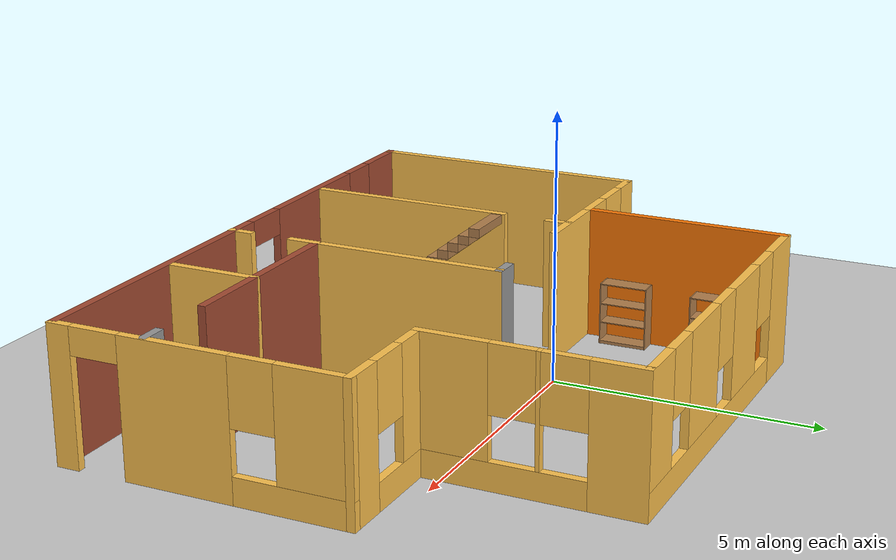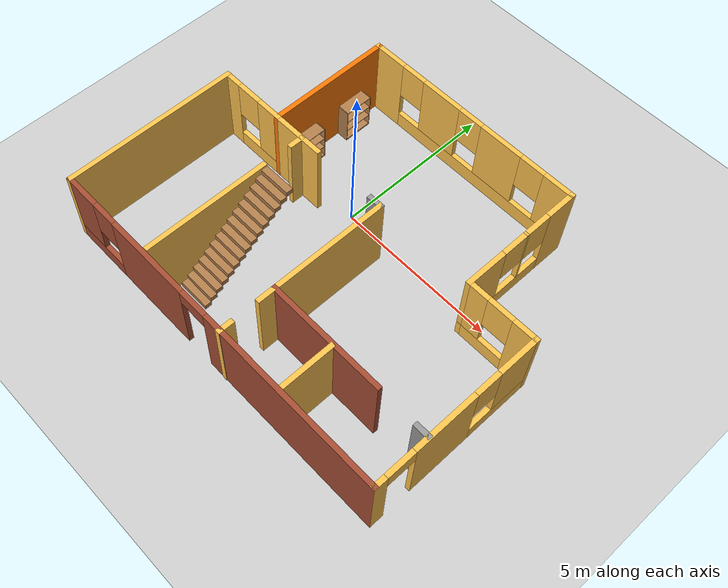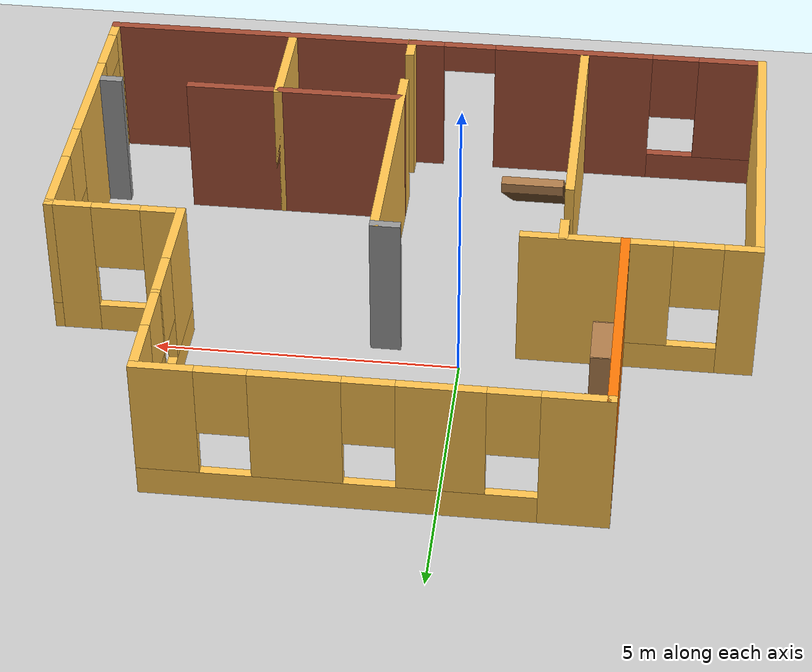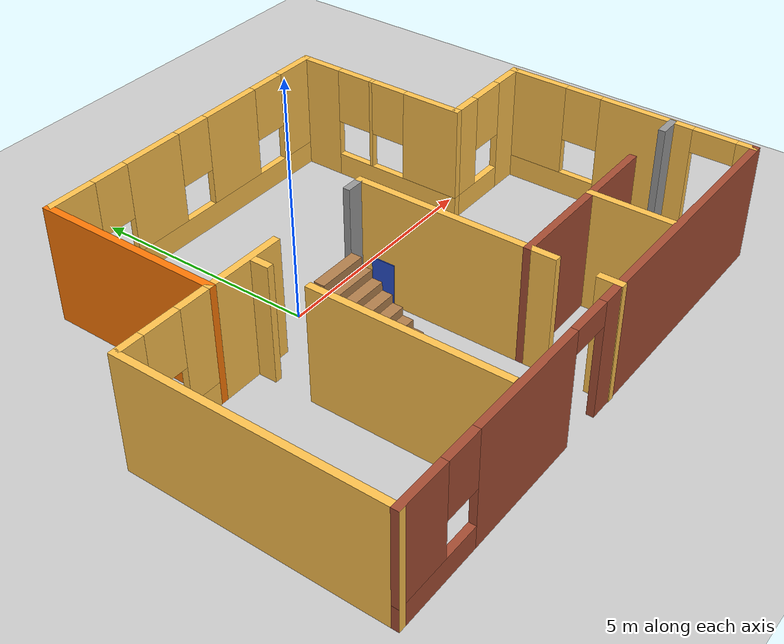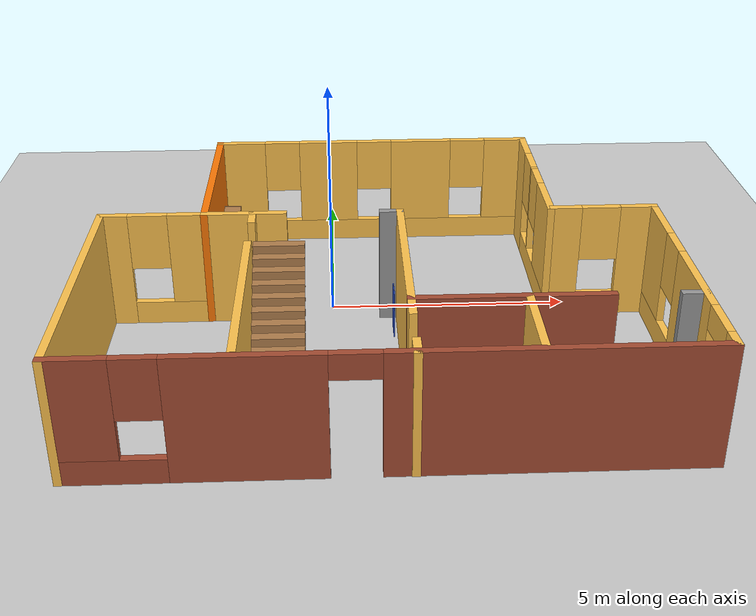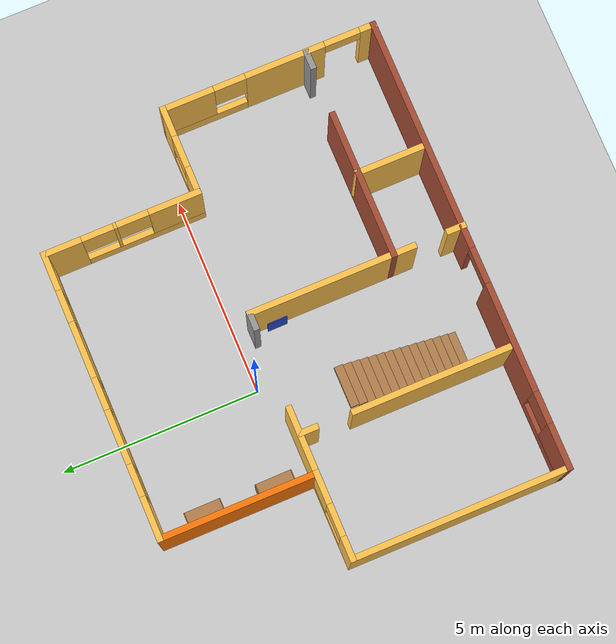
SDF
<sdf version="1.6">
 <world name="default">
  <model name="ground_plane">
   <static>1</static>
   <link name="link">
    <collision name="collision">
     <geometry><plane><normal>0 0 1</normal><size>100 100</size></plane></geometry>
     <surface><friction><ode><mu>100</mu><mu2>50</mu2></ode></friction></surface>
    </collision>
    <visual name="visual">
     <cast_shadows>0</cast_shadows>
     <geometry><plane><normal>0 0 1</normal><size>100 100</size></plane></geometry>
     <material>
      <script><uri>file://media/materials/scripts/gazebo.material</uri><name>Gazebo/Grey</name></script>
     </material>
    </visual>
   </link>
  </model>
  <model name="myhome">
   <pose>1.00458 -1.17606 0 0 -0 0</pose>
   <link name="Stairs_0">
    <visual name="Stairs_0_Visual_0">
     <pose>-1.99954 -3.64454 0.083333 0 -0 -3.14159</pose>
     <geometry><box><size>1 0.213511 0.166667</size></box></geometry>
     <material>
      <script><uri>file://media/materials/scripts/gazebo.material</uri><name>Gazebo/Wood</name></script>
      <ambient>0.760784 0.662745 0.627451 1</ambient>
     </material>
     <meta><layer>0</layer></meta>
    </visual>
    <collision name="Stairs_0_Collision_0">
     <geometry><box><size>1 0.213511 0.166667</size></box></geometry>
     <pose>-1.99954 -3.64454 0.083333 0 -0 -3.14159</pose>
    </collision>
    <visual name="Stairs_0_Visual_1">
     <pose>-1.99954 -3.43103 0.25 0 -0 -3.14159</pose>
     <geometry><box><size>1 0.213511 0.166667</size></box></geometry>
     <material>
      <script><uri>file://media/materials/scripts/gazebo.material</uri><name>Gazebo/Wood</name></script>
      <ambient>0.760784 0.662745 0.627451 1</ambient>
     </material>
     <meta><layer>0</layer></meta>
    </visual>
    <collision name="Stairs_0_Collision_1">
     <geometry><box><size>1 0.213511 0.166667</size></box></geometry>
     <pose>-1.99954 -3.43103 0.25 0 -0 -3.14159</pose>
    </collision>
    <visual name="Stairs_0_Visual_2">
     <pose>-1.99954 -3.21752 0.416667 0 -0 -3.14159</pose>
     <geometry><box><size>1 0.213511 0.166667</size></box></geometry>
     <material>
      <script><uri>file://media/materials/scripts/gazebo.material</uri><name>Gazebo/Wood</name></script>
      <ambient>0.760784 0.662745 0.627451 1</ambient>
     </material>
     <meta><layer>0</layer></meta>
    </visual>
    <collision name="Stairs_0_Collision_2">
     <geometry><box><size>1 0.213511 0.166667</size></box></geometry>
     <pose>-1.99954 -3.21752 0.416667 0 -0 -3.14159</pose>
    </collision>
    <visual name="Stairs_0_Visual_3">
     <pose>-1.99954 -3.00401 0.583333 0 -0 -3.14159</pose>
     <geometry><box><size>1 0.213511 0.166667</size></box></geometry>
     <material>
      <script><uri>file://media/materials/scripts/gazebo.material</uri><name>Gazebo/Wood</name></script>
      <ambient>0.760784 0.662745 0.627451 1</ambient>
     </material>
     <meta><layer>0</layer></meta>
    </visual>
    <collision name="Stairs_0_Collision_3">
     <geometry><box><size>1 0.213511 0.166667</size></box></geometry>
     <pose>-1.99954 -3.00401 0.583333 0 -0 -3.14159</pose>
    </collision>
    <visual name="Stairs_0_Visual_4">
     <pose>-1.99954 -2.7905 0.75 0 -0 -3.14159</pose>
     <geometry><box><size>1 0.213511 0.166667</size></box></geometry>
     <material>
      <script><uri>file://media/materials/scripts/gazebo.material</uri><name>Gazebo/Wood</name></script>
      <ambient>0.760784 0.662745 0.627451 1</ambient>
     </material>
     <meta><layer>0</layer></meta>
    </visual>
    <collision name="Stairs_0_Collision_4">
     <geometry><box><size>1 0.213511 0.166667</size></box></geometry>
     <pose>-1.99954 -2.7905 0.75 0 -0 -3.14159</pose>
    </collision>
    <visual name="Stairs_0_Visual_5">
     <pose>-1.99954 -2.57699 0.916667 0 -0 -3.14159</pose>
     <geometry><box><size>1 0.213511 0.166667</size></box></geometry>
     <material>
      <script><uri>file://media/materials/scripts/gazebo.material</uri><name>Gazebo/Wood</name></script>
      <ambient>0.760784 0.662745 0.627451 1</ambient>
     </material>
     <meta><layer>0</layer></meta>
    </visual>
    <collision name="Stairs_0_Collision_5">
     <geometry><box><size>1 0.213511 0.166667</size></box></geometry>
     <pose>-1.99954 -2.57699 0.916667 0 -0 -3.14159</pose>
    </collision>
    <visual name="Stairs_0_Visual_6">
     <pose>-1.99954 -2.36347 1.08333 0 -0 -3.14159</pose>
     <geometry><box><size>1 0.213511 0.166667</size></box></geometry>
     <material>
      <script><uri>file://media/materials/scripts/gazebo.material</uri><name>Gazebo/Wood</name></script>
      <ambient>0.760784 0.662745 0.627451 1</ambient>
     </material>
     <meta><layer>0</layer></meta>
    </visual>
    <collision name="Stairs_0_Collision_6">
     <geometry><box><size>1 0.213511 0.166667</size></box></geometry>
     <pose>-1.99954 -2.36347 1.08333 0 -0 -3.14159</pose>
    </collision>
    <visual name="Stairs_0_Visual_7">
     <pose>-1.99954 -2.14996 1.25 0 -0 -3.14159</pose>
     <geometry><box><size>1 0.213511 0.166667</size></box></geometry>
     <material>
      <script><uri>file://media/materials/scripts/gazebo.material</uri><name>Gazebo/Wood</name></script>
      <ambient>0.760784 0.662745 0.627451 1</ambient>
     </material>
     <meta><layer>0</layer></meta>
    </visual>
    <collision name="Stairs_0_Collision_7">
     <geometry><box><size>1 0.213511 0.166667</size></box></geometry>
     <pose>-1.99954 -2.14996 1.25 0 -0 -3.14159</pose>
    </collision>
    <visual name="Stairs_0_Visual_8">
     <pose>-1.99954 -1.93645 1.41667 0 -0 -3.14159</pose>
     <geometry><box><size>1 0.213511 0.166667</size></box></geometry>
     <material>
      <script><uri>file://media/materials/scripts/gazebo.material</uri><name>Gazebo/Wood</name></script>
      <ambient>0.760784 0.662745 0.627451 1</ambient>
     </material>
     <meta><layer>0</layer></meta>
    </visual>
    <collision name="Stairs_0_Collision_8">
     <geometry><box><size>1 0.213511 0.166667</size></box></geometry>
     <pose>-1.99954 -1.93645 1.41667 0 -0 -3.14159</pose>
    </collision>
    <visual name="Stairs_0_Visual_9">
     <pose>-1.99954 -1.72294 1.58333 0 -0 -3.14159</pose>
     <geometry><box><size>1 0.213511 0.166667</size></box></geometry>
     <material>
      <script><uri>file://media/materials/scripts/gazebo.material</uri><name>Gazebo/Wood</name></script>
      <ambient>0.760784 0.662745 0.627451 1</ambient>
     </material>
     <meta><layer>0</layer></meta>
    </visual>
    <collision name="Stairs_0_Collision_9">
     <geometry><box><size>1 0.213511 0.166667</size></box></geometry>
     <pose>-1.99954 -1.72294 1.58333 0 -0 -3.14159</pose>
    </collision>
    <visual name="Stairs_0_Visual_10">
     <pose>-1.99954 -1.50943 1.75 0 -0 -3.14159</pose>
     <geometry><box><size>1 0.213511 0.166667</size></box></geometry>
     <material>
      <script><uri>file://media/materials/scripts/gazebo.material</uri><name>Gazebo/Wood</name></script>
      <ambient>0.760784 0.662745 0.627451 1</ambient>
     </material>
     <meta><layer>0</layer></meta>
    </visual>
    <collision name="Stairs_0_Collision_10">
     <geometry><box><size>1 0.213511 0.166667</size></box></geometry>
     <pose>-1.99954 -1.50943 1.75 0 -0 -3.14159</pose>
    </collision>
    <visual name="Stairs_0_Visual_11">
     <pose>-1.99954 -1.29592 1.91667 0 -0 -3.14159</pose>
     <geometry><box><size>1 0.213511 0.166667</size></box></geometry>
     <material>
      <script><uri>file://media/materials/scripts/gazebo.material</uri><name>Gazebo/Wood</name></script>
      <ambient>0.760784 0.662745 0.627451 1</ambient>
     </material>
     <meta><layer>0</layer></meta>
    </visual>
    <collision name="Stairs_0_Collision_11">
     <geometry><box><size>1 0.213511 0.166667</size></box></geometry>
     <pose>-1.99954 -1.29592 1.91667 0 -0 -3.14159</pose>
    </collision>
    <visual name="Stairs_0_Visual_12">
     <pose>-1.99954 -1.08241 2.08333 0 -0 -3.14159</pose>
     <geometry><box><size>1 0.213511 0.166667</size></box></geometry>
     <material>
      <script><uri>file://media/materials/scripts/gazebo.material</uri><name>Gazebo/Wood</name></script>
      <ambient>0.760784 0.662745 0.627451 1</ambient>
     </material>
     <meta><layer>0</layer></meta>
    </visual>
    <collision name="Stairs_0_Collision_12">
     <geometry><box><size>1 0.213511 0.166667</size></box></geometry>
     <pose>-1.99954 -1.08241 2.08333 0 -0 -3.14159</pose>
    </collision>
    <visual name="Stairs_0_Visual_13">
     <pose>-1.99954 -0.868895 2.25 0 -0 -3.14159</pose>
     <geometry><box><size>1 0.213511 0.166667</size></box></geometry>
     <material>
      <script><uri>file://media/materials/scripts/gazebo.material</uri><name>Gazebo/Wood</name></script>
      <ambient>0.760784 0.662745 0.627451 1</ambient>
     </material>
     <meta><layer>0</layer></meta>
    </visual>
    <collision name="Stairs_0_Collision_13">
     <geometry><box><size>1 0.213511 0.166667</size></box></geometry>
     <pose>-1.99954 -0.868895 2.25 0 -0 -3.14159</pose>
    </collision>
    <visual name="Stairs_0_Visual_14">
     <pose>-1.99954 -0.655384 2.41667 0 -0 -3.14159</pose>
     <geometry><box><size>1 0.213511 0.166667</size></box></geometry>
     <material>
      <script><uri>file://media/materials/scripts/gazebo.material</uri><name>Gazebo/Wood</name></script>
      <ambient>0.760784 0.662745 0.627451 1</ambient>
     </material>
     <meta><layer>0</layer></meta>
    </visual>
    <collision name="Stairs_0_Collision_14">
     <geometry><box><size>1 0.213511 0.166667</size></box></geometry>
     <pose>-1.99954 -0.655384 2.41667 0 -0 -3.14159</pose>
    </collision>
   </link>
   <link name="Wall_0">
    <pose>0 -4.59248 0 0 -0 3.14159</pose>
    <visual name="Wall_0_Visual_0">
     <pose>-2.79983 0 1.25 0 -0 0</pose>
     <geometry><box><size>5.90034 0.15 2.5</size></box></geometry>
     <material>
      <script><uri>file://media/materials/scripts/gazebo.material</uri><name>Gazebo/Bricks</name></script>
      <ambient>1 0.764706 0.305882 1</ambient>
     </material>
     <meta><layer>0</layer></meta>
    </visual>
    <collision name="Wall_0_Collision_0">
     <geometry><box><size>5.90034 0.15 2.5</size></box></geometry>
     <pose>-2.79983 0 1.25 0 -0 0</pose>
    </collision>
    <visual name="Wall_0_Visual_1">
     <pose>2.41807 0 1.25 0 -0 0</pose>
     <geometry><box><size>2.73546 0.15 2.5</size></box></geometry>
     <material>
      <script><uri>file://media/materials/scripts/gazebo.material</uri><name>Gazebo/Bricks</name></script>
      <ambient>1 0.764706 0.305882 1</ambient>
     </material>
     <meta><layer>0</layer></meta>
    </visual>
    <collision name="Wall_0_Collision_1">
     <geometry><box><size>2.73546 0.15 2.5</size></box></geometry>
     <pose>2.41807 0 1.25 0 -0 0</pose>
    </collision>
    <visual name="Wall_0_Visual_2">
     <pose>4.7679 0 0.25 0 -0 0</pose>
     <geometry><box><size>1.9642 0.15 0.5</size></box></geometry>
     <material>
      <script><uri>file://media/materials/scripts/gazebo.material</uri><name>Gazebo/Bricks</name></script>
      <ambient>1 0.764706 0.305882 1</ambient>
     </material>
     <meta><layer>0</layer></meta>
    </visual>
    <collision name="Wall_0_Collision_2">
     <geometry><box><size>1.9642 0.15 0.5</size></box></geometry>
     <pose>4.7679 0 0.25 0 -0 0</pose>
    </collision>
    <visual name="Wall_0_Visual_3">
     <pose>5.1679 0 1.5 0 -0 0</pose>
     <geometry><box><size>1.1642 0.15 2</size></box></geometry>
     <material>
      <script><uri>file://media/materials/scripts/gazebo.material</uri><name>Gazebo/Bricks</name></script>
      <ambient>1 0.764706 0.305882 1</ambient>
     </material>
     <meta><layer>0</layer></meta>
    </visual>
    <collision name="Wall_0_Collision_3">
     <geometry><box><size>1.1642 0.15 2</size></box></geometry>
     <pose>5.1679 0 1.5 0 -0 0</pose>
    </collision>
    <visual name="Wall_0_Visual_4">
     <pose>4.1858 0 1.9 0 -0 0</pose>
     <geometry><box><size>0.8 0.15 1.2</size></box></geometry>
     <material>
      <script><uri>file://media/materials/scripts/gazebo.material</uri><name>Gazebo/Bricks</name></script>
      <ambient>1 0.764706 0.305882 1</ambient>
     </material>
     <meta><layer>0</layer></meta>
    </visual>
    <collision name="Wall_0_Collision_4">
     <geometry><box><size>0.8 0.15 1.2</size></box></geometry>
     <pose>4.1858 0 1.9 0 -0 0</pose>
    </collision>
    <visual name="Wall_0_Visual_5">
     <pose>0.600338 0 2.25 0 -0 0</pose>
     <geometry><box><size>0.9 0.15 0.5</size></box></geometry>
     <material>
      <script><uri>file://media/materials/scripts/gazebo.material</uri><name>Gazebo/Bricks</name></script>
      <ambient>1 0.764706 0.305882 1</ambient>
     </material>
     <meta><layer>0</layer></meta>
    </visual>
    <collision name="Wall_0_Collision_5">
     <geometry><box><size>0.9 0.15 0.5</size></box></geometry>
     <pose>0.600338 0 2.25 0 -0 0</pose>
    </collision>
   </link>
   <link name="Wall_10">
    <pose>3.525 2.68251 0 0 0 -1.5708</pose>
    <visual name="Wall_10_Visual_0">
     <pose>-1.49909 0 1.25 0 -0 0</pose>
     <geometry><box><size>1.00181 0.15 2.5</size></box></geometry>
     <material>
      <script><uri>file://media/materials/scripts/gazebo.material</uri><name>Gazebo/Grey</name></script>
      <ambient>1 0.764706 0.305882 1</ambient>
     </material>
     <meta><layer>0</layer></meta>
    </visual>
    <collision name="Wall_10_Collision_0">
     <geometry><box><size>1.00181 0.15 2.5</size></box></geometry>
     <pose>-1.49909 0 1.25 0 -0 0</pose>
    </collision>
    <visual name="Wall_10_Visual_1">
     <pose>0.500907 0 0.25 0 -0 0</pose>
     <geometry><box><size>2.99819 0.15 0.5</size></box></geometry>
     <material>
      <script><uri>file://media/materials/scripts/gazebo.material</uri><name>Gazebo/Grey</name></script>
      <ambient>1 0.764706 0.305882 1</ambient>
     </material>
     <meta><layer>0</layer></meta>
    </visual>
    <collision name="Wall_10_Collision_1">
     <geometry><box><size>2.99819 0.15 0.5</size></box></geometry>
     <pose>0.500907 0 0.25 0 -0 0</pose>
    </collision>
    <visual name="Wall_10_Visual_2">
     <pose>-0.160935 0 1.5 0 -0 0</pose>
     <geometry><box><size>0.074503 0.15 2</size></box></geometry>
     <material>
      <script><uri>file://media/materials/scripts/gazebo.material</uri><name>Gazebo/Grey</name></script>
      <ambient>1 0.764706 0.305882 1</ambient>
     </material>
     <meta><layer>0</layer></meta>
    </visual>
    <collision name="Wall_10_Collision_2">
     <geometry><box><size>0.074503 0.15 2</size></box></geometry>
     <pose>-0.160935 0 1.5 0 -0 0</pose>
    </collision>
    <visual name="Wall_10_Visual_3">
     <pose>1.33816 0 1.5 0 -0 0</pose>
     <geometry><box><size>1.32368 0.15 2</size></box></geometry>
     <material>
      <script><uri>file://media/materials/scripts/gazebo.material</uri><name>Gazebo/Grey</name></script>
      <ambient>1 0.764706 0.305882 1</ambient>
     </material>
     <meta><layer>0</layer></meta>
    </visual>
    <collision name="Wall_10_Collision_3">
     <geometry><box><size>1.32368 0.15 2</size></box></geometry>
     <pose>1.33816 0 1.5 0 -0 0</pose>
    </collision>
    <visual name="Wall_10_Visual_4">
     <pose>-0.598187 0 1.9 0 -0 0</pose>
     <geometry><box><size>0.8 0.15 1.2</size></box></geometry>
     <material>
      <script><uri>file://media/materials/scripts/gazebo.material</uri><name>Gazebo/Grey</name></script>
      <ambient>1 0.764706 0.305882 1</ambient>
     </material>
     <meta><layer>0</layer></meta>
    </visual>
    <collision name="Wall_10_Collision_4">
     <geometry><box><size>0.8 0.15 1.2</size></box></geometry>
     <pose>-0.598187 0 1.9 0 -0 0</pose>
    </collision>
    <visual name="Wall_10_Visual_5">
     <pose>0.276316 0 1.9 0 -0 0</pose>
     <geometry><box><size>0.8 0.15 1.2</size></box></geometry>
     <material>
      <script><uri>file://media/materials/scripts/gazebo.material</uri><name>Gazebo/Grey</name></script>
      <ambient>1 0.764706 0.305882 1</ambient>
     </material>
     <meta><layer>0</layer></meta>
    </visual>
    <collision name="Wall_10_Collision_5">
     <geometry><box><size>0.8 0.15 1.2</size></box></geometry>
     <pose>0.276316 0 1.9 0 -0 0</pose>
    </collision>
   </link>
   <link name="Wall_12">
    <collision name="Wall_12_Collision">
     <geometry><box><size>1.75 0.15 2.5</size></box></geometry>
     <pose>0 0 1.25 0 -0 0</pose>
    </collision>
    <visual name="Wall_12_Visual">
     <pose>0 0 1.25 0 -0 0</pose>
     <geometry><box><size>1.75 0.15 2.5</size></box></geometry>
     <material>
      <script><uri>file://media/materials/scripts/gazebo.material</uri><name>Gazebo/Grey</name></script>
      <ambient>1 0.764706 0.305882 1</ambient>
     </material>
     <meta><layer>0</layer></meta>
    </visual>
    <pose>-2.775 0.757515 0 0 -0 0</pose>
   </link>
   <link name="Wall_14">
    <collision name="Wall_14_Collision">
     <geometry><box><size>0.5 0.15 2.5</size></box></geometry>
     <pose>0 0 1.25 0 -0 0</pose>
    </collision>
    <visual name="Wall_14_Visual">
     <pose>0 0 1.25 0 -0 0</pose>
     <geometry><box><size>0.5 0.15 2.5</size></box></geometry>
     <material>
      <script><uri>file://media/materials/scripts/gazebo.material</uri><name>Gazebo/Grey</name></script>
      <ambient>1 0.764706 0.305882 1</ambient>
     </material>
     <meta><layer>0</layer></meta>
    </visual>
    <pose>-2.5942 0.552153 0 0 0 -1.5708</pose>
   </link>
   <link name="Wall_16">
    <collision name="Wall_16_Collision">
     <geometry><box><size>4 0.15 2.5</size></box></geometry>
     <pose>0 0 1.25 0 -0 0</pose>
    </collision>
    <visual name="Wall_16_Visual">
     <pose>0 0 1.25 0 -0 0</pose>
     <geometry><box><size>4 0.15 2.5</size></box></geometry>
     <material>
      <script><uri>file://media/materials/scripts/gazebo.material</uri><name>Gazebo/Grey</name></script>
      <ambient>1 0.764706 0.305882 1</ambient>
     </material>
     <meta><layer>0</layer></meta>
    </visual>
    <pose>-2.6117 -2.5096 0 0 0 -1.5708</pose>
   </link>
   <link name="Wall_18">
    <collision name="Wall_18_Collision">
     <geometry><box><size>0.5 0.15 2.5</size></box></geometry>
     <pose>0 0 1.25 0 -0 0</pose>
    </collision>
    <visual name="Wall_18_Visual">
     <pose>0 0 1.25 0 -0 0</pose>
     <geometry><box><size>0.5 0.15 2.5</size></box></geometry>
     <material>
      <script><uri>file://media/materials/scripts/gazebo.material</uri><name>Gazebo/Grey</name></script>
      <ambient>1 1 1 1</ambient>
     </material>
     <meta><layer>0</layer></meta>
    </visual>
    <pose>0.239285 0.744643 0 0 -0 0</pose>
   </link>
   <link name="Wall_19">
    <collision name="Wall_19_Collision">
     <geometry><box><size>4.25 0.15 2.5</size></box></geometry>
     <pose>0 0 1.25 0 -0 0</pose>
    </collision>
    <visual name="Wall_19_Visual">
     <pose>0 0 1.25 0 -0 0</pose>
     <geometry><box><size>4.25 0.15 2.5</size></box></geometry>
     <material>
      <script><uri>file://media/materials/scripts/gazebo.material</uri><name>Gazebo/Grey</name></script>
      <ambient>1 0.764706 0.305882 1</ambient>
     </material>
     <meta><layer>0</layer></meta>
    </visual>
    <pose>0.414285 -1.30536 0 0 0 -1.5708</pose>
   </link>
   <link name="Wall_2">
    <collision name="Wall_2_Collision">
     <geometry><box><size>5.5 0.15 2.5</size></box></geometry>
     <pose>0 0 1.25 0 -0 0</pose>
    </collision>
    <visual name="Wall_2_Visual">
     <pose>0 0 1.25 0 -0 0</pose>
     <geometry><box><size>5.5 0.15 2.5</size></box></geometry>
     <material>
      <script><uri>file://media/materials/scripts/gazebo.material</uri><name>Gazebo/Grey</name></script>
      <ambient>1 0.764706 0.305882 1</ambient>
     </material>
     <meta><layer>0</layer></meta>
    </visual>
    <pose>-5.675 -1.91749 0 0 -0 1.5708</pose>
   </link>
   <link name="Wall_21">
    <collision name="Wall_21_Collision">
     <geometry><box><size>0.5 0.15 2.5</size></box></geometry>
     <pose>0 0 1.25 0 -0 0</pose>
    </collision>
    <visual name="Wall_21_Visual">
     <pose>0 0 1.25 0 -0 0</pose>
     <geometry><box><size>0.5 0.15 2.5</size></box></geometry>
     <material>
      <script><uri>file://media/materials/scripts/gazebo.material</uri><name>Gazebo/Grey</name></script>
      <ambient>1 0.764706 0.305882 1</ambient>
     </material>
     <meta><layer>0</layer></meta>
    </visual>
    <pose>0.414086 -4.43252 0 0 0 -1.5708</pose>
   </link>
   <link name="Wall_23">
    <collision name="Wall_23_Collision">
     <geometry><box><size>3.75 0.15 2.5</size></box></geometry>
     <pose>0 0 1.25 0 -0 0</pose>
    </collision>
    <visual name="Wall_23_Visual">
     <pose>0 0 1.25 0 -0 0</pose>
     <geometry><box><size>3.75 0.15 2.5</size></box></geometry>
     <material>
      <script><uri>file://media/materials/scripts/gazebo.material</uri><name>Gazebo/Bricks</name></script>
      <ambient>1 0.764706 0.305882 1</ambient>
     </material>
     <meta><layer>0</layer></meta>
    </visual>
    <pose>2.21409 -2.85831 0 0 -0 0</pose>
   </link>
   <link name="Wall_25">
    <collision name="Wall_25_Collision">
     <geometry><box><size>0.5 0.15 2.5</size></box></geometry>
     <pose>0 0 1.25 0 -0 0</pose>
    </collision>
    <visual name="Wall_25_Visual">
     <pose>0 0 1.25 0 -0 0</pose>
     <geometry><box><size>0.5 0.15 2.5</size></box></geometry>
     <material>
      <script><uri>file://media/materials/scripts/gazebo.material</uri><name>Gazebo/Grey</name></script>
      <ambient>1 1 1 1</ambient>
     </material>
     <meta><layer>0</layer></meta>
    </visual>
    <pose>5.46881 -2.8758 0 0 -0 0</pose>
   </link>
   <link name="Wall_27">
    <collision name="Wall_27_Collision">
     <geometry><box><size>1.75 0.15 2.5</size></box></geometry>
     <pose>0 0 1.25 0 -0 0</pose>
    </collision>
    <visual name="Wall_27_Visual">
     <pose>0 0 1.25 0 -0 0</pose>
     <geometry><box><size>1.75 0.15 2.5</size></box></geometry>
     <material>
      <script><uri>file://media/materials/scripts/gazebo.material</uri><name>Gazebo/Grey</name></script>
      <ambient>1 0.764706 0.305882 1</ambient>
     </material>
     <meta><layer>0</layer></meta>
    </visual>
    <pose>2.51289 -3.65831 0 0 0 -1.5708</pose>
   </link>
   <link name="Wall_3">
    <pose>-4.625 0.757515 0 0 -0 0</pose>
    <visual name="Wall_3_Visual_0">
     <pose>-0.813996 0 1.25 0 -0 0</pose>
     <geometry><box><size>0.622008 0.15 2.5</size></box></geometry>
     <material>
      <script><uri>file://media/materials/scripts/gazebo.material</uri><name>Gazebo/Grey</name></script>
      <ambient>1 0.764706 0.305882 1</ambient>
     </material>
     <meta><layer>0</layer></meta>
    </visual>
    <collision name="Wall_3_Collision_0">
     <geometry><box><size>0.622008 0.15 2.5</size></box></geometry>
     <pose>-0.813996 0 1.25 0 -0 0</pose>
    </collision>
    <visual name="Wall_3_Visual_1">
     <pose>0.311004 0 0.25 0 -0 0</pose>
     <geometry><box><size>1.62799 0.15 0.5</size></box></geometry>
     <material>
      <script><uri>file://media/materials/scripts/gazebo.material</uri><name>Gazebo/Grey</name></script>
      <ambient>1 0.764706 0.305882 1</ambient>
     </material>
     <meta><layer>0</layer></meta>
    </visual>
    <collision name="Wall_3_Collision_1">
     <geometry><box><size>1.62799 0.15 0.5</size></box></geometry>
     <pose>0.311004 0 0.25 0 -0 0</pose>
    </collision>
    <visual name="Wall_3_Visual_2">
     <pose>0.711004 0 1.5 0 -0 0</pose>
     <geometry><box><size>0.827992 0.15 2</size></box></geometry>
     <material>
      <script><uri>file://media/materials/scripts/gazebo.material</uri><name>Gazebo/Grey</name></script>
      <ambient>1 0.764706 0.305882 1</ambient>
     </material>
     <meta><layer>0</layer></meta>
    </visual>
    <collision name="Wall_3_Collision_2">
     <geometry><box><size>0.827992 0.15 2</size></box></geometry>
     <pose>0.711004 0 1.5 0 -0 0</pose>
    </collision>
    <visual name="Wall_3_Visual_3">
     <pose>-0.102992 0 1.9 0 -0 0</pose>
     <geometry><box><size>0.8 0.15 1.2</size></box></geometry>
     <material>
      <script><uri>file://media/materials/scripts/gazebo.material</uri><name>Gazebo/Grey</name></script>
      <ambient>1 0.764706 0.305882 1</ambient>
     </material>
     <meta><layer>0</layer></meta>
    </visual>
    <collision name="Wall_3_Collision_3">
     <geometry><box><size>0.8 0.15 1.2</size></box></geometry>
     <pose>-0.102992 0 1.9 0 -0 0</pose>
    </collision>
   </link>
   <link name="Wall_5">
    <pose>5.675 -1.91749 0 0 -0 1.5708</pose>
    <visual name="Wall_5_Visual_0">
     <pose>-2.5339 0 1.25 0 -0 0</pose>
     <geometry><box><size>0.432201 0.15 2.5</size></box></geometry>
     <material>
      <script><uri>file://media/materials/scripts/gazebo.material</uri><name>Gazebo/Grey</name></script>
      <ambient>1 0.764706 0.305882 1</ambient>
     </material>
     <meta><layer>0</layer></meta>
    </visual>
    <collision name="Wall_5_Collision_0">
     <geometry><box><size>0.432201 0.15 2.5</size></box></geometry>
     <pose>-2.5339 0 1.25 0 -0 0</pose>
    </collision>
    <visual name="Wall_5_Visual_1">
     <pose>-0.408613 0 1.25 0 -0 0</pose>
     <geometry><box><size>2.01837 0.15 2.5</size></box></geometry>
     <material>
      <script><uri>file://media/materials/scripts/gazebo.material</uri><name>Gazebo/Grey</name></script>
      <ambient>1 0.764706 0.305882 1</ambient>
     </material>
     <meta><layer>0</layer></meta>
    </visual>
    <collision name="Wall_5_Collision_1">
     <geometry><box><size>2.01837 0.15 2.5</size></box></geometry>
     <pose>-0.408613 0 1.25 0 -0 0</pose>
    </collision>
    <visual name="Wall_5_Visual_2">
     <pose>1.67529 0 0.25 0 -0 0</pose>
     <geometry><box><size>2.14943 0.15 0.5</size></box></geometry>
     <material>
      <script><uri>file://media/materials/scripts/gazebo.material</uri><name>Gazebo/Grey</name></script>
      <ambient>1 0.764706 0.305882 1</ambient>
     </material>
     <meta><layer>0</layer></meta>
    </visual>
    <collision name="Wall_5_Collision_2">
     <geometry><box><size>2.14943 0.15 0.5</size></box></geometry>
     <pose>1.67529 0 0.25 0 -0 0</pose>
    </collision>
    <visual name="Wall_5_Visual_3">
     <pose>2.07529 0 1.5 0 -0 0</pose>
     <geometry><box><size>1.34943 0.15 2</size></box></geometry>
     <material>
      <script><uri>file://media/materials/scripts/gazebo.material</uri><name>Gazebo/Grey</name></script>
      <ambient>1 0.764706 0.305882 1</ambient>
     </material>
     <meta><layer>0</layer></meta>
    </visual>
    <collision name="Wall_5_Collision_3">
     <geometry><box><size>1.34943 0.15 2</size></box></geometry>
     <pose>2.07529 0 1.5 0 -0 0</pose>
    </collision>
    <visual name="Wall_5_Visual_4">
     <pose>1.00057 0 1.9 0 -0 0</pose>
     <geometry><box><size>0.8 0.15 1.2</size></box></geometry>
     <material>
      <script><uri>file://media/materials/scripts/gazebo.material</uri><name>Gazebo/Grey</name></script>
      <ambient>1 0.764706 0.305882 1</ambient>
     </material>
     <meta><layer>0</layer></meta>
    </visual>
    <collision name="Wall_5_Collision_4">
     <geometry><box><size>0.8 0.15 1.2</size></box></geometry>
     <pose>1.00057 0 1.9 0 -0 0</pose>
    </collision>
    <visual name="Wall_5_Visual_5">
     <pose>-1.8678 0 2.25 0 -0 0</pose>
     <geometry><box><size>0.9 0.15 0.5</size></box></geometry>
     <material>
      <script><uri>file://media/materials/scripts/gazebo.material</uri><name>Gazebo/Grey</name></script>
      <ambient>1 0.764706 0.305882 1</ambient>
     </material>
     <meta><layer>0</layer></meta>
    </visual>
    <collision name="Wall_5_Collision_5">
     <geometry><box><size>0.9 0.15 0.5</size></box></geometry>
     <pose>-1.8678 0 2.25 0 -0 0</pose>
    </collision>
   </link>
   <link name="Wall_6">
    <pose>4.625 0.757515 0 0 -0 3.14159</pose>
    <visual name="Wall_6_Visual_0">
     <pose>-0.73836 0 1.25 0 -0 0</pose>
     <geometry><box><size>0.773279 0.15 2.5</size></box></geometry>
     <material>
      <script><uri>file://media/materials/scripts/gazebo.material</uri><name>Gazebo/Grey</name></script>
      <ambient>1 0.764706 0.305882 1</ambient>
     </material>
     <meta><layer>0</layer></meta>
    </visual>
    <collision name="Wall_6_Collision_0">
     <geometry><box><size>0.773279 0.15 2.5</size></box></geometry>
     <pose>-0.73836 0 1.25 0 -0 0</pose>
    </collision>
    <visual name="Wall_6_Visual_1">
     <pose>0.38664 0 0.25 0 -0 0</pose>
     <geometry><box><size>1.47672 0.15 0.5</size></box></geometry>
     <material>
      <script><uri>file://media/materials/scripts/gazebo.material</uri><name>Gazebo/Grey</name></script>
      <ambient>1 0.764706 0.305882 1</ambient>
     </material>
     <meta><layer>0</layer></meta>
    </visual>
    <collision name="Wall_6_Collision_1">
     <geometry><box><size>1.47672 0.15 0.5</size></box></geometry>
     <pose>0.38664 0 0.25 0 -0 0</pose>
    </collision>
    <visual name="Wall_6_Visual_2">
     <pose>0.78664 0 1.5 0 -0 0</pose>
     <geometry><box><size>0.676721 0.15 2</size></box></geometry>
     <material>
      <script><uri>file://media/materials/scripts/gazebo.material</uri><name>Gazebo/Grey</name></script>
      <ambient>1 0.764706 0.305882 1</ambient>
     </material>
     <meta><layer>0</layer></meta>
    </visual>
    <collision name="Wall_6_Collision_2">
     <geometry><box><size>0.676721 0.15 2</size></box></geometry>
     <pose>0.78664 0 1.5 0 -0 0</pose>
    </collision>
    <visual name="Wall_6_Visual_3">
     <pose>0.048279 0 1.9 0 -0 0</pose>
     <geometry><box><size>0.8 0.15 1.2</size></box></geometry>
     <material>
      <script><uri>file://media/materials/scripts/gazebo.material</uri><name>Gazebo/Grey</name></script>
      <ambient>1 0.764706 0.305882 1</ambient>
     </material>
     <meta><layer>0</layer></meta>
    </visual>
    <collision name="Wall_6_Collision_3">
     <geometry><box><size>0.8 0.15 1.2</size></box></geometry>
     <pose>0.048279 0 1.9 0 -0 0</pose>
    </collision>
   </link>
   <link name="Wall_8">
    <collision name="Wall_8_Collision">
     <geometry><box><size>4 0.15 2.5</size></box></geometry>
     <pose>0 0 1.25 0 -0 0</pose>
    </collision>
    <visual name="Wall_8_Visual">
     <pose>0 0 1.25 0 -0 0</pose>
     <geometry><box><size>4 0.15 2.5</size></box></geometry>
     <material>
      <script><uri>file://media/materials/scripts/gazebo.material</uri><name>Gazebo/Grey</name></script>
      <ambient>0.996078 0.47451 0.0196078 1</ambient>
     </material>
     <meta><layer>0</layer></meta>
    </visual>
    <pose>-3.575 2.68251 0 0 -0 1.5708</pose>
   </link>
   <link name="Wall_9">
    <pose>-0.025 4.60752 0 0 -0 0</pose>
    <visual name="Wall_9_Visual_0">
     <pose>-3.06973 0 1.25 0 -0 0</pose>
     <geometry><box><size>1.11054 0.15 2.5</size></box></geometry>
     <material>
      <script><uri>file://media/materials/scripts/gazebo.material</uri><name>Gazebo/Grey</name></script>
      <ambient>1 0.764706 0.305882 1</ambient>
     </material>
     <meta><layer>0</layer></meta>
    </visual>
    <collision name="Wall_9_Collision_0">
     <geometry><box><size>1.11054 0.15 2.5</size></box></geometry>
     <pose>-3.06973 0 1.25 0 -0 0</pose>
    </collision>
    <visual name="Wall_9_Visual_1">
     <pose>0.555269 0 0.25 0 -0 0</pose>
     <geometry><box><size>6.13946 0.15 0.5</size></box></geometry>
     <material>
      <script><uri>file://media/materials/scripts/gazebo.material</uri><name>Gazebo/Grey</name></script>
      <ambient>1 0.764706 0.305882 1</ambient>
     </material>
     <meta><layer>0</layer></meta>
    </visual>
    <collision name="Wall_9_Collision_1">
     <geometry><box><size>6.13946 0.15 0.5</size></box></geometry>
     <pose>0.555269 0 0.25 0 -0 0</pose>
    </collision>
    <visual name="Wall_9_Visual_2">
     <pose>-1.03882 0 1.5 0 -0 0</pose>
     <geometry><box><size>1.35128 0.15 2</size></box></geometry>
     <material>
      <script><uri>file://media/materials/scripts/gazebo.material</uri><name>Gazebo/Grey</name></script>
      <ambient>1 0.764706 0.305882 1</ambient>
     </material>
     <meta><layer>0</layer></meta>
    </visual>
    <collision name="Wall_9_Collision_2">
     <geometry><box><size>1.35128 0.15 2</size></box></geometry>
     <pose>-1.03882 0 1.5 0 -0 0</pose>
    </collision>
    <visual name="Wall_9_Visual_3">
     <pose>1.13869 0 1.5 0 -0 0</pose>
     <geometry><box><size>1.40375 0.15 2</size></box></geometry>
     <material>
      <script><uri>file://media/materials/scripts/gazebo.material</uri><name>Gazebo/Grey</name></script>
      <ambient>1 0.764706 0.305882 1</ambient>
     </material>
     <meta><layer>0</layer></meta>
    </visual>
    <collision name="Wall_9_Collision_3">
     <geometry><box><size>1.40375 0.15 2</size></box></geometry>
     <pose>1.13869 0 1.5 0 -0 0</pose>
    </collision>
    <visual name="Wall_9_Visual_4">
     <pose>3.13278 0 1.5 0 -0 0</pose>
     <geometry><box><size>0.984438 0.15 2</size></box></geometry>
     <material>
      <script><uri>file://media/materials/scripts/gazebo.material</uri><name>Gazebo/Grey</name></script>
      <ambient>1 0.764706 0.305882 1</ambient>
     </material>
     <meta><layer>0</layer></meta>
    </visual>
    <collision name="Wall_9_Collision_4">
     <geometry><box><size>0.984438 0.15 2</size></box></geometry>
     <pose>3.13278 0 1.5 0 -0 0</pose>
    </collision>
    <visual name="Wall_9_Visual_5">
     <pose>-2.11446 0 1.9 0 -0 0</pose>
     <geometry><box><size>0.8 0.15 1.2</size></box></geometry>
     <material>
      <script><uri>file://media/materials/scripts/gazebo.material</uri><name>Gazebo/Grey</name></script>
      <ambient>1 0.764706 0.305882 1</ambient>
     </material>
     <meta><layer>0</layer></meta>
    </visual>
    <collision name="Wall_9_Collision_5">
     <geometry><box><size>0.8 0.15 1.2</size></box></geometry>
     <pose>-2.11446 0 1.9 0 -0 0</pose>
    </collision>
    <visual name="Wall_9_Visual_6">
     <pose>0.036815 0 1.9 0 -0 0</pose>
     <geometry><box><size>0.8 0.15 1.2</size></box></geometry>
     <material>
      <script><uri>file://media/materials/scripts/gazebo.material</uri><name>Gazebo/Grey</name></script>
      <ambient>1 0.764706 0.305882 1</ambient>
     </material>
     <meta><layer>0</layer></meta>
    </visual>
    <collision name="Wall_9_Collision_6">
     <geometry><box><size>0.8 0.15 1.2</size></box></geometry>
     <pose>0.036815 0 1.9 0 -0 0</pose>
    </collision>
    <visual name="Wall_9_Visual_7">
     <pose>2.24056 0 1.9 0 -0 0</pose>
     <geometry><box><size>0.8 0.15 1.2</size></box></geometry>
     <material>
      <script><uri>file://media/materials/scripts/gazebo.material</uri><name>Gazebo/Grey</name></script>
      <ambient>1 0.764706 0.305882 1</ambient>
     </material>
     <meta><layer>0</layer></meta>
    </visual>
    <collision name="Wall_9_Collision_7">
     <geometry><box><size>0.8 0.15 1.2</size></box></geometry>
     <pose>2.24056 0 1.9 0 -0 0</pose>
    </collision>
   </link>
   <static>1</static>
  </model>
  <model name="bookshelf">
   <static>1</static>
   <link name="link">
    <inertial><mass>1</mass></inertial>
    <collision name="back">
     <pose>0 0.005 0.6 0 -0 0</pose>
     <geometry><box><size>0.9 0.01 1.2</size></box></geometry>
    </collision>
    <visual name="visual1">
     <pose>0 0.005 0.6 0 -0 0</pose>
     <geometry><box><size>0.9 0.01 1.2</size></box></geometry>
     <material>
      <script><uri>file://media/materials/scripts/gazebo.material</uri><name>Gazebo/Wood</name></script>
     </material>
    </visual>
    <collision name="left_side">
     <pose>0.45 -0.195 0.6 0 -0 0</pose>
     <geometry><box><size>0.02 0.4 1.2</size></box></geometry>
    </collision>
    <visual name="visual2">
     <pose>0.45 -0.195 0.6 0 -0 0</pose>
     <geometry><box><size>0.02 0.4 1.2</size></box></geometry>
     <material>
      <script><uri>file://media/materials/scripts/gazebo.material</uri><name>Gazebo/Wood</name></script>
     </material>
    </visual>
    <collision name="right_side">
     <pose>-0.45 -0.195 0.6 0 -0 0</pose>
     <geometry><box><size>0.02 0.4 1.2</size></box></geometry>
    </collision>
    <visual name="visual3">
     <pose>-0.45 -0.195 0.6 0 -0 0</pose>
     <geometry><box><size>0.02 0.4 1.2</size></box></geometry>
     <material>
      <script><uri>file://media/materials/scripts/gazebo.material</uri><name>Gazebo/Wood</name></script>
     </material>
    </visual>
    <collision name="bottom">
     <pose>0 -0.195 0.03 0 -0 0</pose>
     <geometry><box><size>0.88 0.4 0.06</size></box></geometry>
    </collision>
    <visual name="visual4">
     <pose>0 -0.195 0.03 0 -0 0</pose>
     <geometry><box><size>0.88 0.4 0.06</size></box></geometry>
     <material>
      <script><uri>file://media/materials/scripts/gazebo.material</uri><name>Gazebo/Wood</name></script>
     </material>
    </visual>
    <collision name="top">
     <pose>0 -0.195 1.19 0 -0 0</pose>
     <geometry><box><size>0.88 0.4 0.02</size></box></geometry>
    </collision>
    <visual name="visual5">
     <pose>0 -0.195 1.19 0 -0 0</pose>
     <geometry><box><size>0.88 0.4 0.02</size></box></geometry>
     <material>
      <script><uri>file://media/materials/scripts/gazebo.material</uri><name>Gazebo/Wood</name></script>
     </material>
    </visual>
    <collision name="low_shelf">
     <pose>0 -0.195 0.43 0 -0 0</pose>
     <geometry><box><size>0.88 0.4 0.02</size></box></geometry>
    </collision>
    <visual name="visual6">
     <pose>0 -0.195 0.43 0 -0 0</pose>
     <geometry><box><size>0.88 0.4 0.02</size></box></geometry>
     <material>
      <script><uri>file://media/materials/scripts/gazebo.material</uri><name>Gazebo/Wood</name></script>
     </material>
    </visual>
    <collision name="high_shelf">
     <pose>0 -0.195 0.8 0 -0 0</pose>
     <geometry><box><size>0.88 0.4 0.02</size></box></geometry>
    </collision>
    <visual name="visual7">
     <pose>0 -0.195 0.8 0 -0 0</pose>
     <geometry><box><size>0.88 0.4 0.02</size></box></geometry>
     <material>
      <script><uri>file://media/materials/scripts/gazebo.material</uri><name>Gazebo/Wood</name></script>
     </material>
    </visual>
   </link>
   <pose>-2.52423 2.27115 0 0.010486 0.000465 1.57369</pose>
  </model>
  <model name="bookshelf_0">
   <static>1</static>
   <link name="link">
    <inertial><mass>1</mass></inertial>
    <collision name="back">
     <pose>0 0.005 0.6 0 -0 0</pose>
     <geometry><box><size>0.9 0.01 1.2</size></box></geometry>
    </collision>
    <visual name="visual1">
     <pose>0 0.005 0.6 0 -0 0</pose>
     <geometry><box><size>0.9 0.01 1.2</size></box></geometry>
     <material>
      <script><uri>file://media/materials/scripts/gazebo.material</uri><name>Gazebo/Wood</name></script>
     </material>
    </visual>
    <collision name="left_side">
     <pose>0.45 -0.195 0.6 0 -0 0</pose>
     <geometry><box><size>0.02 0.4 1.2</size></box></geometry>
    </collision>
    <visual name="visual2">
     <pose>0.45 -0.195 0.6 0 -0 0</pose>
     <geometry><box><size>0.02 0.4 1.2</size></box></geometry>
     <material>
      <script><uri>file://media/materials/scripts/gazebo.material</uri><name>Gazebo/Wood</name></script>
     </material>
    </visual>
    <collision name="right_side">
     <pose>-0.45 -0.195 0.6 0 -0 0</pose>
     <geometry><box><size>0.02 0.4 1.2</size></box></geometry>
    </collision>
    <visual name="visual3">
     <pose>-0.45 -0.195 0.6 0 -0 0</pose>
     <geometry><box><size>0.02 0.4 1.2</size></box></geometry>
     <material>
      <script><uri>file://media/materials/scripts/gazebo.material</uri><name>Gazebo/Wood</name></script>
     </material>
    </visual>
    <collision name="bottom">
     <pose>0 -0.195 0.03 0 -0 0</pose>
     <geometry><box><size>0.88 0.4 0.06</size></box></geometry>
    </collision>
    <visual name="visual4">
     <pose>0 -0.195 0.03 0 -0 0</pose>
     <geometry><box><size>0.88 0.4 0.06</size></box></geometry>
     <material>
      <script><uri>file://media/materials/scripts/gazebo.material</uri><name>Gazebo/Wood</name></script>
     </material>
    </visual>
    <collision name="top">
     <pose>0 -0.195 1.19 0 -0 0</pose>
     <geometry><box><size>0.88 0.4 0.02</size></box></geometry>
    </collision>
    <visual name="visual5">
     <pose>0 -0.195 1.19 0 -0 0</pose>
     <geometry><box><size>0.88 0.4 0.02</size></box></geometry>
     <material>
      <script><uri>file://media/materials/scripts/gazebo.material</uri><name>Gazebo/Wood</name></script>
     </material>
    </visual>
    <collision name="low_shelf">
     <pose>0 -0.195 0.43 0 -0 0</pose>
     <geometry><box><size>0.88 0.4 0.02</size></box></geometry>
    </collision>
    <visual name="visual6">
     <pose>0 -0.195 0.43 0 -0 0</pose>
     <geometry><box><size>0.88 0.4 0.02</size></box></geometry>
     <material>
      <script><uri>file://media/materials/scripts/gazebo.material</uri><name>Gazebo/Wood</name></script>
     </material>
    </visual>
    <collision name="high_shelf">
     <pose>0 -0.195 0.8 0 -0 0</pose>
     <geometry><box><size>0.88 0.4 0.02</size></box></geometry>
    </collision>
    <visual name="visual7">
     <pose>0 -0.195 0.8 0 -0 0</pose>
     <geometry><box><size>0.88 0.4 0.02</size></box></geometry>
     <material>
      <script><uri>file://media/materials/scripts/gazebo.material</uri><name>Gazebo/Wood</name></script>
     </material>
    </visual>
   </link>
   <pose>-2.53606 0.48798 0 0 -0 1.57894</pose>
  </model>
  <model name="picture_clone">
   <link name="link">
    <pose>0.161006 0.582358 0 0 -0 0</pose>
    <inertial>
     <mass>1</mass>
     <inertia>
      <ixx>0.166667</ixx>
      <ixy>0</ixy>
      <ixz>0</ixz>
      <iyy>0.166667</iyy>
      <iyz>0</iyz>
      <izz>0.166667</izz>
     </inertia>
    </inertial>
    <visual name="visual">
     <geometry><box><size>0.5 0.02 1</size></box></geometry>
     <material>
      <script><name>Gazebo/Blue</name><uri>file://media/materials/scripts/gazebo.material</uri></script>
      <shader type="pixel"><normal_map>__default__</normal_map></shader>
      <ambient>0.3 0.3 0.3 1</ambient>
      <diffuse>0.7 0.7 0.7 1</diffuse>
      <specular>0.01 0.01 0.01 1</specular>
      <emissive>0 0 0 1</emissive>
     </material>
    </visual>
    <collision name="collision">
     <geometry><box><size>0.5 0.02 1</size></box></geometry>
     <surface>
      <friction>
       <ode><mu>1</mu><mu2>1</mu2><fdir1>0 0 0</fdir1><slip1>0</slip1><slip2>0</slip2></ode>
       <torsional>
        <coefficient>1</coefficient>
        <patch_radius>0</patch_radius>
        <surface_radius>0</surface_radius>
        <use_patch_radius>1</use_patch_radius>
        <ode><slip>0</slip></ode>
       </torsional>
      </friction>
      <bounce><restitution_coefficient>0</restitution_coefficient><threshold>1e+06</threshold></bounce>
      <contact>
       <collide_without_contact>0</collide_without_contact>
       <collide_without_contact_bitmask>1</collide_without_contact_bitmask>
       <collide_bitmask>1</collide_bitmask>
       <ode>
        <soft_cfm>0</soft_cfm>
        <soft_erp>0.2</soft_erp>
        <kp>1e+13</kp>
        <kd>1</kd>
        <max_vel>0.01</max_vel>
        <min_depth>0</min_depth>
       </ode>
       <bullet>
        <split_impulse>1</split_impulse>
        <split_impulse_penetration_threshold>-0.01</split_impulse_penetration_threshold>
        <soft_cfm>0</soft_cfm>
        <soft_erp>0.2</soft_erp>
        <kp>1e+13</kp>
        <kd>1</kd>
       </bullet>
      </contact>
     </surface>
    </collision>
   </link>
   <static>0</static>
   <pose>0.687605 -0.886999 0.5 0 0 -1.56428</pose>
  </model>
 </world>
</sdf>
